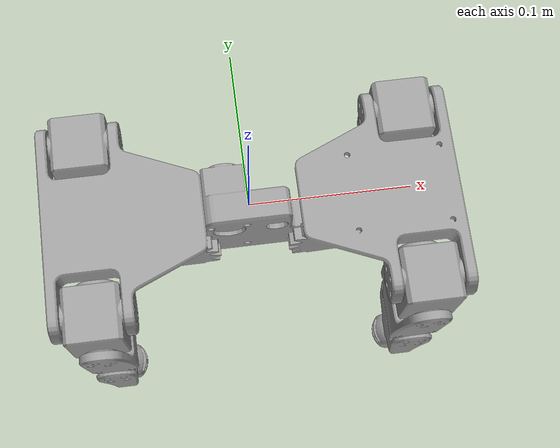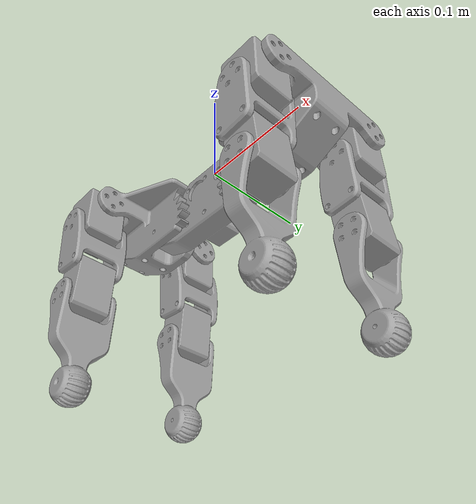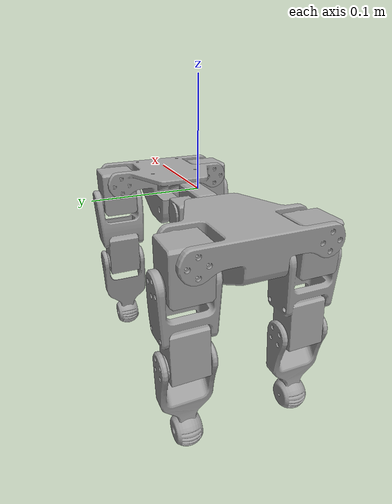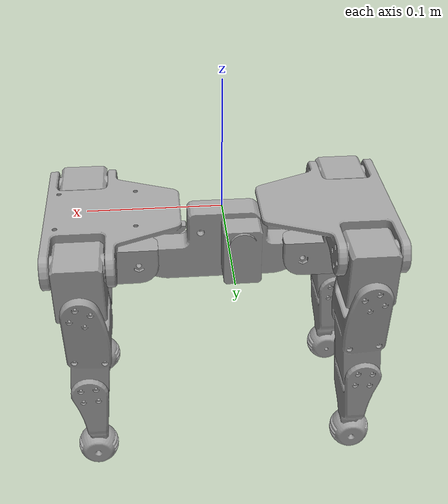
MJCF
<mujoco model="jason_dog">
  <compiler angle="radian" meshdir="meshes"/>

  <asset>
    <mesh name="base_link" file="base_link.STL"/>
    <mesh name="front_link" file="front_link.STL"/>
    <mesh name="FR_hip_link" file="FR_hip_link.STL"/>
    <mesh name="FR_thigh_link" file="FR_thigh_link.STL"/>
    <mesh name="FR_calf_link" file="FR_calf_link.STL"/>
    <mesh name="FL_hip_link" file="FL_hip_link.STL"/>
    <mesh name="FL_thigh_link" file="FL_thigh_link.STL"/>
    <mesh name="FL_calf_link" file="FL_calf_link.STL"/>
    <mesh name="rear_link" file="rear_link.STL"/>
    <mesh name="RR_hip_link" file="RR_hip_link.STL"/>
    <mesh name="RR_thigh_link" file="RR_thigh_link.STL"/>
    <mesh name="RR_calf_link" file="RR_calf_link.STL"/>
    <mesh name="RL_hip_link" file="RL_hip_link.STL"/>
    <mesh name="RL_thigh_link" file="RL_thigh_link.STL"/>
    <mesh name="RL_calf_link" file="RL_calf_link.STL"/>
  </asset>

  <worldbody>
    <geom pos="0 0 0" quat="0.707107 0.707107 0 0" type="mesh" contype="0" conaffinity="0" group="1" density="0" rgba="0.627451 0.627451 0.627451 1" mesh="base_link"/>
    <geom pos="0 0 0" quat="0.707107 0.707107 0 0" type="mesh" rgba="0.627451 0.627451 0.627451 1" mesh="base_link"/>
    <body name="front_link" pos="0.064338 0 -0.040039">
      <inertial pos="0.028726 -0.000635 0.020681" quat="-0.100005 0.659093 0.0944888 0.73937" mass="0.184615" diaginertia="0.000215546 0.000161191 0.000138519"/>
      <joint name="front_joint" pos="0 0 0" axis="0 -1 0" range="-3.14 3.14"/>
      <geom quat="0.707107 0.707107 0 0" type="mesh" contype="0" conaffinity="0" group="1" density="0" rgba="0.627451 0.627451 0.627451 1" mesh="front_link"/>
      <geom quat="0.707107 0.707107 0 0" type="mesh" rgba="0.627451 0.627451 0.627451 1" mesh="front_link"/>
      <body name="FR_hip_link" pos="0.0602 -0.055 0.027">
        <inertial pos="-0.0192 0 -0.012026" mass="0.0611356" diaginertia="1.75137e-05 1.7469e-05 1.3299e-05"/>
        <joint name="FR_hip_joint" pos="0 0 0" axis="1 0 0" range="-3.14 3.14"/>
        <geom quat="0.707107 0.707107 0 0" type="mesh" contype="0" conaffinity="0" group="1" density="0" rgba="0.627451 0.627451 0.627451 1" mesh="FR_hip_link"/>
        <geom quat="0.707107 0.707107 0 0" type="mesh" rgba="0.627451 0.627451 0.627451 1" mesh="FR_hip_link"/>
        <body name="FR_thigh_link" pos="-0.019 -0.0192 -0.024">
          <inertial pos="-0.001902 0.01935 -0.047685" quat="0.999877 3.08218e-06 -0.0156554 1.45037e-06" mass="0.0746776" diaginertia="6.21312e-05 5.19971e-05 2.17293e-05"/>
          <joint name="FR_thigh_joint" pos="0 0 0" axis="0 -1 0" range="-3.14 3.14"/>
          <geom quat="0.707107 0.707107 0 0" type="mesh" contype="0" conaffinity="0" group="1" density="0" rgba="0.627451 0.627451 0.627451 1" mesh="FR_thigh_link"/>
          <geom quat="0.707107 0.707107 0 0" type="mesh" rgba="0.627451 0.627451 0.627451 1" mesh="FR_thigh_link"/>
          <body name="FR_calf_link" pos="-0.0002 -0.0002 -0.075">
            <inertial pos="-0.001793 0.01936 -0.046374" quat="0.999892 0.000272135 -0.0146833 -3.0146e-05" mass="0.0410076" diaginertia="3.65346e-05 3.08291e-05 8.97842e-06"/>
            <joint name="FR_calf_joint" pos="0 0 0" axis="0 -1 0" range="-3.14 3.14"/>
            <geom quat="0.707107 0.707107 0 0" type="mesh" contype="0" conaffinity="0" group="1" density="0" rgba="0.627451 0.627451 0.627451 1" mesh="FR_calf_link"/>
            <geom quat="0.707107 0.707107 0 0" type="mesh" rgba="0.627451 0.627451 0.627451 1" mesh="FR_calf_link"/>
          </body>
        </body>
      </body>
      <body name="FL_hip_link" pos="0.0602 0.055 0.027">
        <inertial pos="-0.019 0 -0.012026" mass="0.0611356" diaginertia="1.75137e-05 1.7469e-05 1.3299e-05"/>
        <joint name="FL_hip_joint" pos="0 0 0" axis="1 0 0" range="-3.14 3.14"/>
        <geom quat="0.707107 0.707107 0 0" type="mesh" contype="0" conaffinity="0" group="1" density="0" rgba="0.627451 0.627451 0.627451 1" mesh="FL_hip_link"/>
        <geom quat="0.707107 0.707107 0 0" type="mesh" rgba="0.627451 0.627451 0.627451 1" mesh="FL_hip_link"/>
        <body name="FL_thigh_link" pos="-0.019 0.0192 -0.024">
          <inertial pos="-0.001702 -0.01895 -0.047685" quat="0.999877 4.7206e-06 -0.0156553 7.39113e-08" mass="0.0746776" diaginertia="6.21312e-05 5.19971e-05 2.17293e-05"/>
          <joint name="FL_thigh_joint" pos="0 0 0" axis="0 -1 0" range="-3.14 3.14"/>
          <geom quat="0.707107 0.707107 0 0" type="mesh" contype="0" conaffinity="0" group="1" density="0" rgba="0.627451 0.627451 0.627451 1" mesh="FL_thigh_link"/>
          <geom quat="0.707107 0.707107 0 0" type="mesh" rgba="0.627451 0.627451 0.627451 1" mesh="FL_thigh_link"/>
          <body name="FL_calf_link" pos="0 0.0004 -0.075">
            <inertial pos="-0.001793 -0.01916 -0.046374" quat="0.999892 -0.000269928 -0.0146833 2.95777e-05" mass="0.0410076" diaginertia="3.65346e-05 3.08291e-05 8.97842e-06"/>
            <joint name="FL_calf_joint" pos="0 0 0" axis="0 -1 0" range="-3.14 3.14"/>
            <geom quat="0.707107 0.707107 0 0" type="mesh" contype="0" conaffinity="0" group="1" density="0" rgba="0.627451 0.627451 0.627451 1" mesh="FL_calf_link"/>
            <geom quat="0.707107 0.707107 0 0" type="mesh" rgba="0.627451 0.627451 0.627451 1" mesh="FL_calf_link"/>
          </body>
        </body>
      </body>
    </body>
    <body name="rear_link" pos="-0.060662 0 -0.040039">
      <inertial pos="-0.028749 -0.000634 0.020823" quat="0.0960846 0.734098 -0.10009 0.664718" mass="0.184846" diaginertia="0.00021521 0.000160287 0.000138235"/>
      <joint name="rear_joint" pos="0 0 0" axis="0 -1 0" range="-3.14 3.14"/>
      <geom quat="0.707107 0.707107 0 0" type="mesh" contype="0" conaffinity="0" group="1" density="0" rgba="0.627451 0.627451 0.627451 1" mesh="rear_link"/>
      <geom quat="0.707107 0.707107 0 0" type="mesh" rgba="0.627451 0.627451 0.627451 1" mesh="rear_link"/>
      <body name="RR_hip_link" pos="-0.06 -0.055 0.027">
        <inertial pos="0.019 0 -0.012026" mass="0.0611356" diaginertia="1.75137e-05 1.7469e-05 1.3299e-05"/>
        <joint name="RR_hip_joint" pos="0 0 0" axis="1 0 0" range="-3.14 3.14"/>
        <geom quat="0.707107 0.707107 0 0" type="mesh" contype="0" conaffinity="0" group="1" density="0" rgba="0.627451 0.627451 0.627451 1" mesh="RR_hip_link"/>
        <geom quat="0.707107 0.707107 0 0" type="mesh" rgba="0.627451 0.627451 0.627451 1" mesh="RR_hip_link"/>
        <body name="RR_thigh_link" pos="0.019 -0.0192 -0.024">
          <inertial pos="0.001702 0.01915 -0.047685" quat="0.999877 -4.83591e-06 0.0156549 8.551e-07" mass="0.0746774" diaginertia="6.21313e-05 5.19972e-05 2.17293e-05"/>
          <joint name="RR_thigh_joint" pos="0 0 0" axis="0 1 0" range="-3.14 3.14"/>
          <geom quat="0.707107 0.707107 0 0" type="mesh" contype="0" conaffinity="0" group="1" density="0" rgba="0.627451 0.627451 0.627451 1" mesh="RR_thigh_link"/>
          <geom quat="0.707107 0.707107 0 0" type="mesh" rgba="0.627451 0.627451 0.627451 1" mesh="RR_thigh_link"/>
          <body name="RR_calf_link" pos="0 -0.0002 -0.075">
            <inertial pos="0.001793 0.01916 -0.046374" quat="0.999892 0.000270093 0.0146833 2.97583e-05" mass="0.0410076" diaginertia="3.65346e-05 3.08291e-05 8.97842e-06"/>
            <joint name="RR_calf_joint" pos="0 0 0" axis="0 1 0" range="-3.14 3.14"/>
            <geom quat="0.707107 0.707107 0 0" type="mesh" contype="0" conaffinity="0" group="1" density="0" rgba="0.627451 0.627451 0.627451 1" mesh="RR_calf_link"/>
            <geom quat="0.707107 0.707107 0 0" type="mesh" rgba="0.627451 0.627451 0.627451 1" mesh="RR_calf_link"/>
          </body>
        </body>
      </body>
      <body name="RL_hip_link" pos="-0.06 0.055 0.027">
        <inertial pos="0.019 0 -0.012026" mass="0.0611356" diaginertia="1.75137e-05 1.7469e-05 1.3299e-05"/>
        <joint name="RL_hip_joint" pos="0 0 0" axis="1 0 0" range="-3.14 3.14"/>
        <geom quat="0.707107 0.707107 0 0" type="mesh" contype="0" conaffinity="0" group="1" density="0" rgba="0.627451 0.627451 0.627451 1" mesh="RL_hip_link"/>
        <geom quat="0.707107 0.707107 0 0" type="mesh" rgba="0.627451 0.627451 0.627451 1" mesh="RL_hip_link"/>
        <body name="RL_thigh_link" pos="0.019 0.0192 -0.024">
          <inertial pos="0.001702 -0.01915 -0.047685" quat="0.999877 -3.22752e-06 0.015655 1.47819e-06" mass="0.0746774" diaginertia="6.21313e-05 5.19972e-05 2.17293e-05"/>
          <joint name="RL_thigh_joint" pos="0 0 0" axis="0 1 0" range="-3.14 3.14"/>
          <geom quat="0.707107 0.707107 0 0" type="mesh" contype="0" conaffinity="0" group="1" density="0" rgba="0.627451 0.627451 0.627451 1" mesh="RL_thigh_link"/>
          <geom quat="0.707107 0.707107 0 0" type="mesh" rgba="0.627451 0.627451 0.627451 1" mesh="RL_thigh_link"/>
          <body name="RL_calf_link" pos="0 0.0002 -0.075">
            <inertial pos="0.001793 -0.01916 -0.046374" quat="0.999892 -0.000272139 0.0146833 -3.01495e-05" mass="0.0410076" diaginertia="3.65346e-05 3.08291e-05 8.97842e-06"/>
            <joint name="RL_calf_joint" pos="0 0 0" axis="0 1 0" range="-3.14 3.14"/>
            <geom quat="0.707107 0.707107 0 0" type="mesh" contype="0" conaffinity="0" group="1" density="0" rgba="0.627451 0.627451 0.627451 1" mesh="RL_calf_link"/>
            <geom quat="0.707107 0.707107 0 0" type="mesh" rgba="0.627451 0.627451 0.627451 1" mesh="RL_calf_link"/>
          </body>
        </body>
      </body>
    </body>
  </worldbody>
</mujoco>
